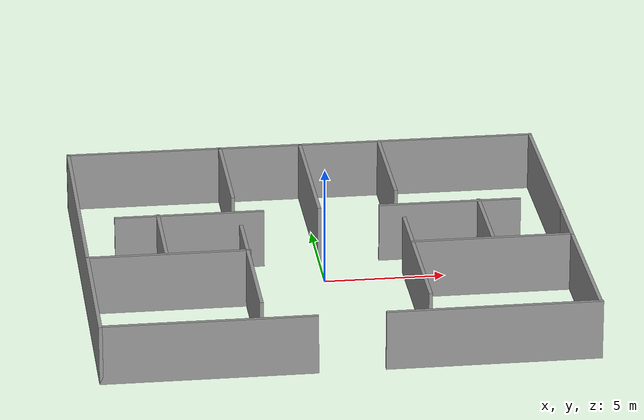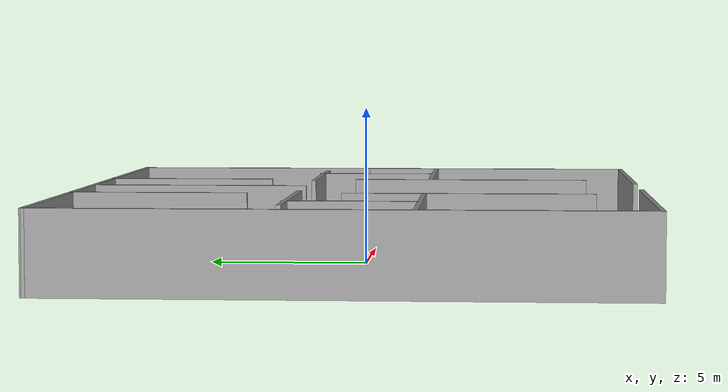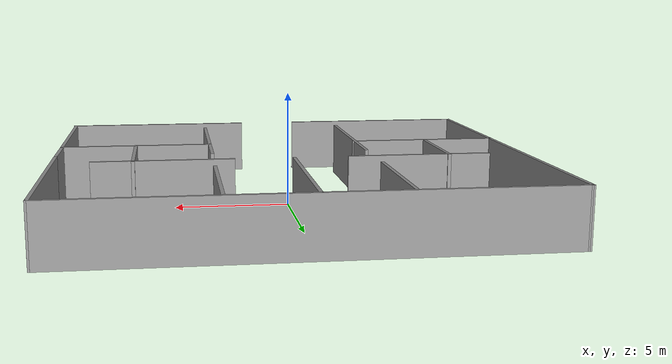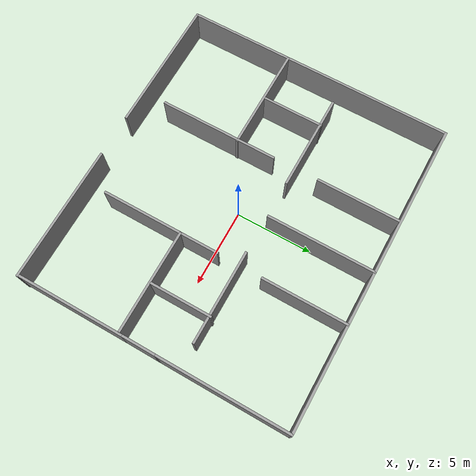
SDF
<?xml version='1.0'?>
<sdf version='1.7'>
  <model name='BigHouseWorld'>
    <pose>0.023882 0.092407 0 0 -0 0</pose>
    <link name='Wall_1'>
      <collision name='Wall_1_Collision'>
        <geometry>
          <box>
            <size>17.75 0.15 2.5</size>
          </box>
        </geometry>
        <pose>0 0 1.25 0 -0 0</pose>
      </collision>
      <visual name='Wall_1_Visual'>
        <pose>0 0 1.25 0 -0 0</pose>
        <geometry>
          <box>
            <size>17.75 0.15 2.5</size>
          </box>
        </geometry>
        <material>
          <script>
            <uri>file://media/materials/scripts/gazebo.material</uri>
            <name>Gazebo/Grey</name>
          </script>
          <ambient>1 1 1 1</ambient>
        </material>
        <meta>
          <layer>0</layer>
        </meta>
      </visual>
      <pose>-10.0296 -8.4e-05 0 0 -0 -1.5708</pose>
    </link>
    <link name='Wall_11'>
      <collision name='Wall_11_Collision'>
        <geometry>
          <box>
            <size>8.5 0.15 2.5</size>
          </box>
        </geometry>
        <pose>0 0 1.25 0 -0 0</pose>
      </collision>
      <visual name='Wall_11_Visual'>
        <pose>0 0 1.25 0 -0 0</pose>
        <geometry>
          <box>
            <size>8.5 0.15 2.5</size>
          </box>
        </geometry>
        <material>
          <script>
            <uri>file://media/materials/scripts/gazebo.material</uri>
            <name>Gazebo/Grey</name>
          </script>
          <ambient>1 1 1 1</ambient>
        </material>
        <meta>
          <layer>0</layer>
        </meta>
      </visual>
      <pose>10.0049 4.57969 0 0 -0 1.5708</pose>
    </link>
    <link name='Wall_20'>
      <collision name='Wall_20_Collision'>
        <geometry>
          <box>
            <size>5.5 0.15 2.5</size>
          </box>
        </geometry>
        <pose>0 0 1.25 0 -0 0</pose>
      </collision>
      <visual name='Wall_20_Visual'>
        <pose>0 0 1.25 0 -0 0</pose>
        <geometry>
          <box>
            <size>5.5 0.15 2.5</size>
          </box>
        </geometry>
        <material>
          <script>
            <uri>file://media/materials/scripts/gazebo.material</uri>
            <name>Gazebo/Grey</name>
          </script>
          <ambient>1 1 1 1</ambient>
        </material>
        <meta>
          <layer>0</layer>
        </meta>
      </visual>
      <pose>-3.49742 6.08994 0 0 -0 -1.5708</pose>
    </link>
    <link name='Wall_22'>
      <collision name='Wall_22_Collision'>
        <geometry>
          <box>
            <size>7.75 0.15 2.5</size>
          </box>
        </geometry>
        <pose>0 0 1.25 0 -0 0</pose>
      </collision>
      <visual name='Wall_22_Visual'>
        <pose>0 0 1.25 0 -0 0</pose>
        <geometry>
          <box>
            <size>7.75 0.15 2.5</size>
          </box>
        </geometry>
        <material>
          <script>
            <uri>file://media/materials/scripts/gazebo.material</uri>
            <name>Gazebo/Grey</name>
          </script>
          <ambient>1 1 1 1</ambient>
        </material>
        <meta>
          <layer>0</layer>
        </meta>
      </visual>
      <pose>-3.46245 -3.43029 0 0 -0 -1.5708</pose>
    </link>
    <link name='Wall_24'>
      <collision name='Wall_24_Collision'>
        <geometry>
          <box>
            <size>5.5 0.15 2.5</size>
          </box>
        </geometry>
        <pose>0 0 1.25 0 -0 0</pose>
      </collision>
      <visual name='Wall_24_Visual'>
        <pose>0 0 1.25 0 -0 0</pose>
        <geometry>
          <box>
            <size>5.5 0.15 2.5</size>
          </box>
        </geometry>
        <material>
          <script>
            <uri>file://media/materials/scripts/gazebo.material</uri>
            <name>Gazebo/Grey</name>
          </script>
          <ambient>1 1 1 1</ambient>
        </material>
        <meta>
          <layer>0</layer>
        </meta>
      </visual>
      <pose>3.39366 6.05496 0 0 -0 -1.5708</pose>
    </link>
    <link name='Wall_26'>
      <collision name='Wall_26_Collision'>
        <geometry>
          <box>
            <size>7.75 0.15 2.5</size>
          </box>
        </geometry>
        <pose>0 0 1.25 0 -0 0</pose>
      </collision>
      <visual name='Wall_26_Visual'>
        <pose>0 0 1.25 0 -0 0</pose>
        <geometry>
          <box>
            <size>7.75 0.15 2.5</size>
          </box>
        </geometry>
        <material>
          <script>
            <uri>file://media/materials/scripts/gazebo.material</uri>
            <name>Gazebo/Grey</name>
          </script>
          <ambient>1 1 1 1</ambient>
        </material>
        <meta>
          <layer>0</layer>
        </meta>
      </visual>
      <pose>3.35868 -3.39531 0 0 -0 -1.5708</pose>
    </link>
    <link name='Wall_28'>
      <collision name='Wall_28_Collision'>
        <geometry>
          <box>
            <size>6.25 0.15 2.5</size>
          </box>
        </geometry>
        <pose>0 0 1.25 0 -0 0</pose>
      </collision>
      <visual name='Wall_28_Visual'>
        <pose>0 0 1.25 0 -0 0</pose>
        <geometry>
          <box>
            <size>6.25 0.15 2.5</size>
          </box>
        </geometry>
        <material>
          <script>
            <uri>file://media/materials/scripts/gazebo.material</uri>
            <name>Gazebo/Grey</name>
          </script>
          <ambient>1 1 1 1</ambient>
        </material>
        <meta>
          <layer>0</layer>
        </meta>
      </visual>
      <pose>-5.48456 1.83887 0 0 -0 0</pose>
    </link>
    <link name='Wall_30'>
      <collision name='Wall_30_Collision'>
        <geometry>
          <box>
            <size>6 0.15 2.5</size>
          </box>
        </geometry>
        <pose>0 0 1.25 0 -0 0</pose>
      </collision>
      <visual name='Wall_30_Visual'>
        <pose>0 0 1.25 0 -0 0</pose>
        <geometry>
          <box>
            <size>6 0.15 2.5</size>
          </box>
        </geometry>
        <material>
          <script>
            <uri>file://media/materials/scripts/gazebo.material</uri>
            <name>Gazebo/Grey</name>
          </script>
          <ambient>1 1 1 1</ambient>
        </material>
        <meta>
          <layer>0</layer>
        </meta>
      </visual>
      <pose>5.47914 1.83887 0 0 -0 0</pose>
    </link>
    <link name='Wall_32'>
      <collision name='Wall_32_Collision'>
        <geometry>
          <box>
            <size>6.75 0.15 2.5</size>
          </box>
        </geometry>
        <pose>0 0 1.25 0 -0 0</pose>
      </collision>
      <visual name='Wall_32_Visual'>
        <pose>0 0 1.25 0 -0 0</pose>
        <geometry>
          <box>
            <size>6.75 0.15 2.5</size>
          </box>
        </geometry>
        <material>
          <script>
            <uri>file://media/materials/scripts/gazebo.material</uri>
            <name>Gazebo/Grey</name>
          </script>
          <ambient>1 1 1 1</ambient>
        </material>
        <meta>
          <layer>0</layer>
        </meta>
      </visual>
      <pose>-6.70373 -2.0789 0 0 -0 0</pose>
    </link>
    <link name='Wall_34'>
      <collision name='Wall_34_Collision'>
        <geometry>
          <box>
            <size>6.75 0.15 2.5</size>
          </box>
        </geometry>
        <pose>0 0 1.25 0 -0 0</pose>
      </collision>
      <visual name='Wall_34_Visual'>
        <pose>0 0 1.25 0 -0 0</pose>
        <geometry>
          <box>
            <size>6.75 0.15 2.5</size>
          </box>
        </geometry>
        <material>
          <script>
            <uri>file://media/materials/scripts/gazebo.material</uri>
            <name>Gazebo/Grey</name>
          </script>
          <ambient>1 1 1 1</ambient>
        </material>
        <meta>
          <layer>0</layer>
        </meta>
      </visual>
      <pose>6.69366 -2.04392 0 0 -0 0</pose>
    </link>
    <link name='Wall_36'>
      <collision name='Wall_36_Collision'>
        <geometry>
          <box>
            <size>7 0.15 2.5</size>
          </box>
        </geometry>
        <pose>0 0 1.25 0 -0 0</pose>
      </collision>
      <visual name='Wall_36_Visual'>
        <pose>0 0 1.25 0 -0 0</pose>
        <geometry>
          <box>
            <size>7 0.15 2.5</size>
          </box>
        </geometry>
        <material>
          <script>
            <uri>file://media/materials/scripts/gazebo.material</uri>
            <name>Gazebo/Grey</name>
          </script>
          <ambient>1 1 1 1</ambient>
        </material>
        <meta>
          <layer>0</layer>
        </meta>
      </visual>
      <pose>-0.034393 5.33994 0 0 -0 -1.5708</pose>
    </link>
    <link name='Wall_46'>
      <collision name='Wall_46_Collision'>
        <geometry>
          <box>
            <size>2.59863 0.15 2.5</size>
          </box>
        </geometry>
        <pose>0 0 1.25 0 -0 0</pose>
      </collision>
      <visual name='Wall_46_Visual'>
        <pose>0 0 1.25 0 -0 0</pose>
        <geometry>
          <box>
            <size>2.59863 0.15 2.5</size>
          </box>
        </geometry>
        <material>
          <script>
            <uri>file://media/materials/scripts/gazebo.material</uri>
            <name>Gazebo/Grey</name>
          </script>
          <ambient>1 1 1 1</ambient>
        </material>
        <meta>
          <layer>0</layer>
        </meta>
      </visual>
      <pose>9.99928 -0.819618 0 0 -0 -1.57539</pose>
    </link>
    <link name='Wall_58'>
      <collision name='Wall_58_Collision'>
        <geometry>
          <box>
            <size>20.1846 0.15 2.5</size>
          </box>
        </geometry>
        <pose>0 0 1.25 0 -0 0</pose>
      </collision>
      <visual name='Wall_58_Visual'>
        <pose>0 0 1.25 0 -0 0</pose>
        <geometry>
          <box>
            <size>20.1846 0.15 2.5</size>
          </box>
        </geometry>
        <material>
          <script>
            <uri>file://media/materials/scripts/gazebo.material</uri>
            <name>Gazebo/Grey</name>
          </script>
          <ambient>1 1 1 1</ambient>
        </material>
        <meta>
          <layer>0</layer>
        </meta>
      </visual>
      <pose>-0.01236 8.7773 0 0 -0 -0.002258</pose>
    </link>
    <link name='Wall_60'>
      <collision name='Wall_60_Collision'>
        <geometry>
          <box>
            <size>4 0.15 2.5</size>
          </box>
        </geometry>
        <pose>0 0 1.25 0 -0 0</pose>
      </collision>
      <visual name='Wall_60_Visual'>
        <pose>0 0 1.25 0 -0 0</pose>
        <geometry>
          <box>
            <size>4 0.15 2.5</size>
          </box>
        </geometry>
        <material>
          <script>
            <uri>file://media/materials/scripts/gazebo.material</uri>
            <name>Gazebo/Grey</name>
          </script>
          <ambient>1 1 1 1</ambient>
        </material>
        <meta>
          <layer>0</layer>
        </meta>
      </visual>
      <pose>-6.79054 -0.042255 0 0 -0 -1.5708</pose>
    </link>
    <link name='Wall_62'>
      <collision name='Wall_62_Collision'>
        <geometry>
          <box>
            <size>4 0.15 2.5</size>
          </box>
        </geometry>
        <pose>0 0 1.25 0 -0 0</pose>
      </collision>
      <visual name='Wall_62_Visual'>
        <pose>0 0 1.25 0 -0 0</pose>
        <geometry>
          <box>
            <size>4 0.15 2.5</size>
          </box>
        </geometry>
        <material>
          <script>
            <uri>file://media/materials/scripts/gazebo.material</uri>
            <name>Gazebo/Grey</name>
          </script>
          <ambient>1 1 1 1</ambient>
        </material>
        <meta>
          <layer>0</layer>
        </meta>
      </visual>
      <pose>6.71179 -0.007275 0 0 -0 -1.5708</pose>
    </link>
    <link name='Wall_64'>
      <collision name='Wall_64_Collision'>
        <geometry>
          <box>
            <size>8.75 0.15 2.5</size>
          </box>
        </geometry>
        <pose>0 0 1.25 0 -0 0</pose>
      </collision>
      <visual name='Wall_64_Visual'>
        <pose>0 0 1.25 0 -0 0</pose>
        <geometry>
          <box>
            <size>8.75 0.15 2.5</size>
          </box>
        </geometry>
        <material>
          <script>
            <uri>file://media/materials/scripts/gazebo.material</uri>
            <name>Gazebo/Grey</name>
          </script>
          <ambient>1 1 1 1</ambient>
        </material>
        <meta>
          <layer>0</layer>
        </meta>
      </visual>
      <pose>-5.72962 -8.80008 0 0 -0 0</pose>
    </link>
    <link name='Wall_66'>
      <collision name='Wall_66_Collision'>
        <geometry>
          <box>
            <size>8.75 0.15 2.5</size>
          </box>
        </geometry>
        <pose>0 0 1.25 0 -0 0</pose>
      </collision>
      <visual name='Wall_66_Visual'>
        <pose>0 0 1.25 0 -0 0</pose>
        <geometry>
          <box>
            <size>8.75 0.15 2.5</size>
          </box>
        </geometry>
        <material>
          <script>
            <uri>file://media/materials/scripts/gazebo.material</uri>
            <name>Gazebo/Grey</name>
          </script>
          <ambient>1 1 1 1</ambient>
        </material>
        <meta>
          <layer>0</layer>
        </meta>
      </visual>
      <pose>5.72979 -8.78619 0 0 -0 0</pose>
    </link>
    <link name='Wall_9'>
      <collision name='Wall_9_Collision'>
        <geometry>
          <box>
            <size>7 0.15 2.5</size>
          </box>
        </geometry>
        <pose>0 0 1.25 0 -0 0</pose>
      </collision>
      <visual name='Wall_9_Visual'>
        <pose>0 0 1.25 0 -0 0</pose>
        <geometry>
          <box>
            <size>7 0.15 2.5</size>
          </box>
        </geometry>
        <material>
          <script>
            <uri>file://media/materials/scripts/gazebo.material</uri>
            <name>Gazebo/Grey</name>
          </script>
          <ambient>1 1 1 1</ambient>
        </material>
        <meta>
          <layer>0</layer>
        </meta>
      </visual>
      <pose>9.99582 -5.29499 0 0 -0 1.5708</pose>
    </link>
    <static>1</static>
  </model>
</sdf>
